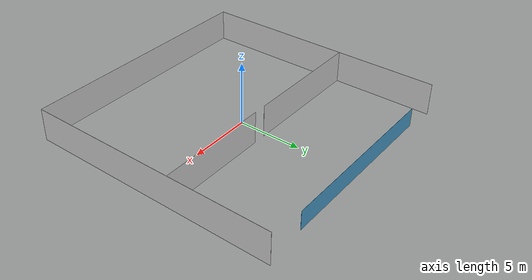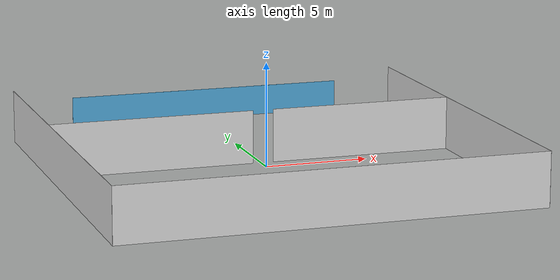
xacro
<?xml version="1.0"?>

<robot name="demo-1">

	<!-- dummy_link -->
	<link name="dummy_link">
		<inertial>
			<origin xyz="0 0 0" />
			<mass value="5.0" />
			<inertia ixx="0.0" ixy="0.0" ixz="0.0" iyy="0.0" iyz="0.0" izz="0.0" />
		</inertial>
		<visual>
			<origin xyz="0 0 0" />
			<geometry>
				<box size="0.00 0.00 0.00" />
			</geometry>
		</visual>
		<collision>
			<origin xyz="0 0 0" />
			<geometry>
				<box size="0.00 0.00 0.00" />
			</geometry>
		</collision>
	</link>

<!-- walls -->

	<!-- north_wall -->
	<link name="north_wall">
		<inertial>
			<origin xyz="0 0 0" />
			<mass value="5.0" />
			<inertia ixx="0.0" ixy="0.0" ixz="0.0" iyy="0.0" iyz="0.0" izz="0.0" />
		</inertial>
		<visual>
			<origin xyz="0 0 0" />
			<geometry>
				<box size="14 0.01 1.5" />
			</geometry>
		</visual>
		<collision>
			<origin xyz="0 0 0" />
			<geometry>
				<box size="14.02 0.03 1.62" />
			</geometry>
		</collision>
	</link>

	<joint name="joint_north_wall" type="fixed">
		<origin xyz="0 10 1" rpy="0 0 0" />
		<parent link="dummy_link" />
		<child link="north_wall" />
	</joint>

	<!-- east_wall -->
	<link name="east_wall">
		<inertial>
			<origin xyz="0 0 0" />
			<mass value="5.0" />
			<inertia ixx="0.0" ixy="0.0" ixz="0.0" iyy="0.0" iyz="0.0" izz="0.0" />
		</inertial>
		<visual>
			<origin xyz="0 0 0" />
			<geometry>
				<box size="0.01 20 2.60" />
			</geometry>
		</visual>
		<collision>
			<origin xyz="0 0 0" />
			<geometry>
				<box size="0.03 20.02 2.62" />
			</geometry>
		</collision>
	</link>

	<joint name="joint_east_wall" type="fixed">
		<origin xyz="10 0 1" rpy="0 0 0" />
		<parent link="dummy_link" />
		<child link="east_wall" />
	</joint>

	<!-- south_wall -->
	<link name="south_wall">
		<inertial>
			<origin xyz="0 0 0" />
			<mass value="5.0" />
			<inertia ixx="0.0" ixy="0.0" ixz="0.0" iyy="0.0" iyz="0.0" izz="0.0" />
		</inertial>
		<visual>
			<origin xyz="0 0 0" />
			<geometry>
				<box size="20 0.01 2.60" />
			</geometry>
		</visual>
		<collision>
			<origin xyz="0 0 0" />
			<geometry>
				<box size="20.2 0.03 2.62" />
			</geometry>
		</collision>
	</link>

	<joint name="joint_south_wall" type="fixed">
		<origin xyz="0 -10 1" rpy="0 0 0" />
		<parent link="dummy_link" />
		<child link="south_wall" />
	</joint>

	<!-- west_wall -->
	<link name="west_wall">
		<inertial>
			<origin xyz="0 0 0" />
			<mass value="5.0" />
			<inertia ixx="0.0" ixy="0.0" ixz="0.0" iyy="0.0" iyz="0.0" izz="0.0" />
		</inertial>
		<visual>
			<origin xyz="0 0 0" />
			<geometry>
				<box size="0.01 20 2.60" />
			</geometry>
		</visual>
		<collision>
			<origin xyz="0 0 0" />
			<geometry>
				<box size="0.03 20.02 2.62" />
			</geometry>
		</collision>
	</link>

	<joint name="joint_west_wall" type="fixed">
		<origin xyz="-10 0 1" rpy="0 0 0" />
		<parent link="dummy_link" />
		<child link="west_wall" />
	</joint>

        <!-- center_wall_one -->
	<link name="center_wall_one">
		<inertial>
			<origin xyz="0 0 0" />
			<mass value="5.0" />
			<inertia ixx="0.0" ixy="0.0" ixz="0.0" iyy="0.0" iyz="0.0" izz="0.0" />
		</inertial>
		<visual>
			<origin xyz="0 0 0" />
			<geometry>
				<box size="10 0.01 2.60" />
			</geometry>
		</visual>
		<collision>
			<origin xyz="0 0 0" />
			<geometry>
				<box size="10.02 0.03 2.62" />
			</geometry>
		</collision>
	</link>

	<joint name="joint_center_wall_one" type="fixed">
		<origin xyz="-5 2 1" rpy="0 0 0" />
		<parent link="dummy_link" />
		<child link="center_wall_one" />
	</joint>

        <!-- center_wall_two -->
	<link name="center_wall_two">
		<inertial>
			<origin xyz="0 0 0" />
			<mass value="5.0" />
			<inertia ixx="0.0" ixy="0.0" ixz="0.0" iyy="0.0" iyz="0.0" izz="0.0" />
		</inertial>
		<visual>
			<origin xyz="0 0 0" />
			<geometry>
				<box size="9 0.01 2.60" />
			</geometry>
		</visual>
		<collision>
			<origin xyz="0 0 0" />
			<geometry>
				<box size="9.02 0.03 2.62" />
			</geometry>
		</collision>
	</link>

	<joint name="joint_center_wall_two" type="fixed">
		<origin xyz="5.5 2 1" rpy="0 0 0" />
		<parent link="dummy_link" />
		<child link="center_wall_two" />
	</joint>

 <gazebo reference="north_wall">
	<material>IPA/Wall2</material>
	<selfCollide>false</selfCollide>
 </gazebo>
 <gazebo reference="south_wall">
	<material>Gazebo/White</material>
	<selfCollide>false</selfCollide>
 </gazebo>
 <gazebo reference="east_wall">
	<material>Gazebo/White</material>
	<selfCollide>false</selfCollide>
 </gazebo>
 <gazebo reference="west_wall">
	<material>Gazebo/White</material>
	<selfCollide>false</selfCollide>
 </gazebo>
 <gazebo reference="center_wall_one">
	<material>Gazebo/White</material>
	<selfCollide>false</selfCollide>
 </gazebo>
 <gazebo reference="center_wall_two">
	<material>Gazebo/White</material>
	<selfCollide>false</selfCollide>
 </gazebo>

</robot>
